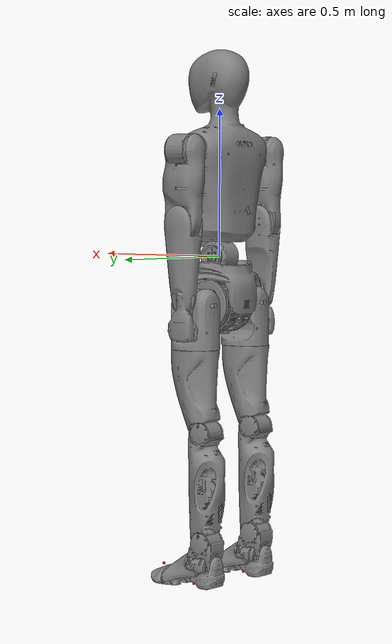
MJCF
<!-- Description:
Isaac Lab robot-only asset derived from inreal_v2_entity2_0528.xml.
Scene floor, lights, visualization assets, and the 1.12 m world spawn offset are removed.
0528 xml: 小腿碰撞体用长方体代替
-->
<mujoco model="InRealV2">
  <!-- Isaac Sim 4.5's MJCF importer crashes when several binary STL files share
       its generated STL_BINARY_ node name. Unique OBJ nodes avoid that importer bug. -->
  <compiler angle="radian" meshdir="../mesh/isaac/"/>

  <default>
    <default class="foot_collision">
      <geom priority="1" condim="3"/>
    </default>
  </default>

  <asset>
    <mesh name="R" content_type="model/obj" file="R.obj"/>
    <mesh name="L1" content_type="model/obj" file="L1.obj"/>
    <mesh name="L11" content_type="model/obj" file="L11.obj"/>
    <mesh name="L2" content_type="model/obj" file="L2.obj"/>
    <mesh name="L21" content_type="model/obj" file="L21.obj"/>
    <mesh name="L3" content_type="model/obj" file="L3.obj"/>
    <mesh name="L31" content_type="model/obj" file="L31.obj"/>
    <mesh name="L4" content_type="model/obj" file="L4.obj"/>
    <mesh name="L41" content_type="model/obj" file="L41.obj"/>
    <mesh name="L5" content_type="model/obj" file="L5.obj"/>
    <mesh name="L51" content_type="model/obj" file="L51.obj"/>
    <mesh name="L6" content_type="model/obj" file="L6.obj"/>
    <mesh name="L7" content_type="model/obj" file="L7.obj"/>
    <mesh name="L61" content_type="model/obj" file="L61.obj"/>
    <mesh name="L71" content_type="model/obj" file="L71.obj"/>
    <mesh name="W" content_type="model/obj" file="W.obj"/>
    <mesh name="C" content_type="model/obj" file="C.obj"/>
    <mesh name="A1" content_type="model/obj" file="A1.obj"/>
    <mesh name="A11" content_type="model/obj" file="A11.obj"/>
    <mesh name="A2" content_type="model/obj" file="A2.obj"/>
    <mesh name="A21" content_type="model/obj" file="A21.obj"/>
    <mesh name="A3" content_type="model/obj" file="A3.obj"/>
    <mesh name="A31" content_type="model/obj" file="A31.obj"/>
  </asset>

  <worldbody>
    <body name="pelvis" pos="0 0 0">
      <!-- pelvis ← entity1.r: mass 10.983→11.555, CoM z -0.146→-0.145 -->
      <inertial pos="0 0 -0.145" mass="11.555" fullinertia="0.083 0.0726 0.071 0 0.000249 0"/>
      <joint name="floating_base_joint" type="free"/>
      <geom type="mesh" contype="0" conaffinity="0" group="1" density="0" mesh="R"/>
      <geom size="0.05 0.175 0.05" pos="0 0 -0.035" type="box" group="3"/>

      <!-- left leg -->
      <!-- hip_pitch_link ← entity1.l1: body y 0.1407→0.14, mass 2.425→2.432 -->
      <body name="left_hip_pitch_link" pos="0 0.14 -0.159">
        <inertial pos="0 0 0" mass="2.432" fullinertia="0.0039 0.0029 0.0032 0 0 0"/>
        <joint name="left_hip_pitch_joint" pos="0 0 0" axis="0 1 0" range="-1.57 1.57" damping="0.05" frictionloss="3" solreffriction="0.0001 2" actuatorfrcrange="-587 587"/>
        <geom type="mesh" contype="0" conaffinity="0" group="1" density="0" mesh="L1"/>
        <geom size="0.055 0.035" quat="0.707035 0 0.707179 0" type="cylinder" group="3"/>
        <!-- hip_roll_link ← entity1.l2: mass 3.246→3.348, CoM pos updated -->
        <body name="left_hip_roll_link" pos="-0.01 0 0">
          <inertial pos="0.0014 0 -0.135" mass="3.348" fullinertia="0.0123 0.0136 0.00678 0 -0.000658 0"/>
          <joint name="left_hip_roll_joint" pos="0 0 0" axis="1 0 0" range="-0.35 1.57" damping="0.05" actuatorfrcrange="-336 336"/>
          <geom type="mesh" contype="0" conaffinity="0" group="1" density="0" mesh="L2"/>
          <geom size="0.05 0.04" pos="0 0 -0.1" type="cylinder" group="3"/>
          <!-- hip_yaw_link ← entity1.l3: body z -0.2051→-0.20534, mass unchanged, inertia updated -->
          <body name="left_hip_yaw_link" pos="0 0 -0.20534">
            <inertial pos="-0.018 -0.001 -0.126" mass="4.39" fullinertia="0.022 0.0227 0.0069 -0.000147 -0.003543 -0.000577"/>
            <joint name="left_hip_yaw_joint" pos="0 0 0" axis="0 0 1" range="-0.785 0.785" damping="0.05" actuatorfrcrange="-336 336"/>
            <geom type="mesh" contype="0" conaffinity="0" group="1" density="0" mesh="L3"/>
            <geom size="0.07 0.075" pos="0 0 -0.05" type="cylinder" group="3"/>
            <!-- knee_link ← entity1.l4: body z -0.2226→-0.2227, mass 4.497→4.765, range -0.26~2.2→0~2.44 -->
            <body name="left_knee_link" pos="-0.043 0 -0.2227">
              <inertial pos="0.002 -0.001 -0.247" mass="4.765" fullinertia="0.04785 0.0477 0.00586 -0.00001 -0.00144 -0.00095"/>
              <joint name="left_knee_joint" pos="0 0 0" axis="0 1 0" range="0 2.44" damping="0.05" frictionloss="8" solreffriction="0.0001 2" actuatorfrcrange="-338 338"/>
              <geom type="mesh" contype="0" conaffinity="0" group="1" density="0" mesh="L4"/>
              <geom size="0.072 0.06 0.14" pos="0.01 0 -0.18" type="box" group="3"/>
              <!-- ankle_pitch_link ← entity1.l5: mass 0.954→1.108, range -0.6~0.75→-0.55~0.73 -->
              <body name="left_ankle_pitch_link" pos="0 0 -0.37">
                <inertial pos="0.011 0.0019 -0.0567" mass="1.108" fullinertia="0.00206 0.0023 0.0016 0.000024 0.000276 -0.000112"/>
                <joint name="left_ankle_pitch_joint" pos="0 0 0" axis="0 1 0" range="-0.55 0.73" damping="0.05" frictionloss="8" solreffriction="0.0001 2" actuatorfrcrange="-338 338"/>
                <geom type="mesh" contype="0" conaffinity="0" group="1" density="0" mesh="L5"/>
                <geom size="0.07 0.05" quat="0.707035 0.707179 0 0" type="cylinder" group="3"/>
                <!-- ankle_roll_link ← entity1.l6: mass 0.91→0.803, range -0.26~0.26→-0.523~0.523 -->
                <body name="left_ankle_roll_link" pos="0.014 0 -0.085">
                  <site name="left_foot" rgba="1 0 0 1" pos="0.04 0 -0.06"/>
                  <site name="left_foot_face" rgba="1 0 0 1" pos="0.17 0 -0.005"/>
                  <inertial pos="0.079793 0.004225 -0.031435" mass="1.580" fullinertia="0.002881 0.009531 0.010455 -0.000298 0.000727 -0.000156"/>
                  <joint name="left_ankle_roll_joint" pos="0 0 0" axis="1 0 0" range="-0.523 0.523" damping="0.05" actuatorfrcrange="-38 38"/>
                  <geom type="mesh" contype="0" conaffinity="0" group="1" density="0" mesh="L6"/>
                  <geom pos="0.131255 0 -0.0463567" quat="1 0 0 0" type="mesh" contype="0" conaffinity="0" group="1" density="0" mesh="L7"/>
                  <geom size="0.05 0.05 0.035" pos="0 0 -0.01" type="box" group="3" class="foot_collision"/>
                  <geom size="0.015 0.04" pos="0.027 0 0.05" euler="1.57 0 0" type="cylinder" group="3" class="foot_collision"/>
                  <geom name="left_foot3_collision" size="0.01 0.03" pos="-0.036 0 -0.056" quat="0.707035 0 0.707179 0" type="cylinder" group="3" class="foot_collision"/>
                  <geom name="left_foot4_collision" size="0.01 0.03" pos="-0.036 0.018 -0.056" quat="0.707035 0 0.707179 0" type="cylinder" group="3" class="foot_collision"/>
                  <geom name="left_foot5_collision" size="0.01 0.025" pos="-0.036 0.036 -0.056" quat="0.707035 0 0.707179 0" type="cylinder" group="3" class="foot_collision"/>
                  <geom name="left_foot6_collision" size="0.01 0.03" pos="-0.036 -0.018 -0.056" quat="0.707035 0 0.707179 0" type="cylinder" group="3" class="foot_collision"/>
                  <geom name="left_foot7_collision" size="0.01 0.025" pos="-0.036 -0.036 -0.056" quat="0.707035 0 0.707179 0" type="cylinder" group="3" class="foot_collision"/>
                  <geom name="left_foot8_collision" size="0.01 0.055" pos="0.14 0 -0.0563567" quat="0.707035 0 0.707179 0" type="cylinder" group="3" class="foot_collision"/>
                  <geom name="left_foot9_collision" size="0.01 0.055" pos="0.14 0.02 -0.0563567" quat="0.707035 0 0.707179 0" type="cylinder" group="3" class="foot_collision"/>
                  <geom name="left_foot10_collision" size="0.01 0.05" pos="0.135 0.04 -0.0563567" quat="0.707035 0 0.707179 0" type="cylinder" group="3" class="foot_collision"/>
                  <geom name="left_foot11_collision" size="0.01 0.055" pos="0.14 -0.02 -0.0563567" quat="0.707035 0 0.707179 0" type="cylinder" group="3" class="foot_collision"/>
                  <geom name="left_foot12_collision" size="0.01 0.05" pos="0.135 -0.04 -0.0563567" quat="0.707035 0 0.707179 0" type="cylinder" group="3" class="foot_collision"/>
                  <!-- 鞋面碰撞体：横向宽度与 L7 可视网格（约 0.11 m）一致。 -->
                  <geom size="0.088 0.055 0.02" pos="0.12 0 -0.008" euler="0 0.35 0" type="box" group="3" class="foot_collision"/>
                </body>
              </body>
            </body>
          </body>
        </body>
      </body>

      <!-- right leg -->
      <!-- hip_pitch_link ← entity1.l1m: body y -0.1417→-0.14, mass 2.425→2.432 -->
      <body name="right_hip_pitch_link" pos="0 -0.14 -0.159">
        <inertial pos="0 0 0" mass="2.432" fullinertia="0.0039 0.0029 0.0032 0 0 0"/>
        <joint name="right_hip_pitch_joint" pos="0 0 0" axis="0 1 0" range="-1.57 1.57" damping="0.05" frictionloss="3" solreffriction="0.0001 2" actuatorfrcrange="-587 587"/>
        <geom type="mesh" contype="0" conaffinity="0" group="1" density="0" mesh="L11"/>
        <geom size="0.055 0.035" quat="0.707035 0 0.707179 0" type="cylinder" group="3"/>
        <!-- hip_roll_link ← entity1.l2m: mass 3.246→3.348, CoM pos updated -->
        <body name="right_hip_roll_link" pos="-0.01 0 0">
          <inertial pos="0.0014 0 -0.135" mass="3.348" fullinertia="0.0123 0.0136 0.00678 0 -0.000658 0"/>
          <joint name="right_hip_roll_joint" pos="0 0 0" axis="1 0 0" range="-1.57 0.35" damping="0.05" actuatorfrcrange="-336 336"/>
          <geom type="mesh" contype="0" conaffinity="0" group="1" density="0" mesh="L21"/>
          <geom size="0.05 0.04" pos="0 0 -0.1" type="cylinder" group="3"/>
          <!-- hip_yaw_link ← entity1.l3m: body z -0.2051→-0.20534, inertia updated (Ixy,Iyz signs flipped) -->
          <body name="right_hip_yaw_link" pos="0 0 -0.20534">
            <inertial pos="-0.018 0.001 -0.126" mass="4.39" fullinertia="0.022 0.0227 0.0069 0.000147 -0.003543 0.000577"/>
            <joint name="right_hip_yaw_joint" pos="0 0 0" axis="0 0 1" range="-0.785 0.785" damping="0.05" actuatorfrcrange="-336 336"/>
            <geom type="mesh" contype="0" conaffinity="0" group="1" density="0" mesh="L31"/>
            <geom size="0.07 0.075" pos="0 0 -0.05" type="cylinder" group="3"/>
            <!-- knee_link ← entity1.l4m: body z -0.2226→-0.2227, mass 4.497→4.765, range -0.26~2.2→0~2.44 -->
            <body name="right_knee_link" pos="-0.043 0 -0.2227">
              <inertial pos="0.002 0.001 -0.247" mass="4.765" fullinertia="0.04785 0.0477 0.00586 0.00001 -0.00144 0.00095"/>
              <joint name="right_knee_joint" pos="0 0 0" axis="0 1 0" range="0 2.44" damping="0.05" frictionloss="8" solreffriction="0.0001 2" actuatorfrcrange="-338 338"/>
              <geom type="mesh" contype="0" conaffinity="0" group="1" density="0" mesh="L41"/>
              <geom size="0.072 0.06 0.14" pos="0.01 0 -0.18" type="box" group="3"/>
              <!-- ankle_pitch_link ← entity1.l5m: mass 0.954→1.108, range -0.6~0.75→-0.55~0.73 -->
              <body name="right_ankle_pitch_link" pos="0 0 -0.37">
                <inertial pos="0.011 -0.0019 -0.0567" mass="1.108" fullinertia="0.00206 0.0023 0.0016 -0.000024 0.000276 0.000112"/>
                <joint name="right_ankle_pitch_joint" pos="0 0 0" axis="0 1 0" range="-0.55 0.73" damping="0.05" frictionloss="8" solreffriction="0.0001 2" actuatorfrcrange="-338 338"/>
                <geom type="mesh" contype="0" conaffinity="0" group="1" density="0" mesh="L51"/>
                <geom size="0.07 0.05" quat="0.707035 0.707179 0 0" type="cylinder" group="3"/>
                <!-- ankle_roll_link ← entity1.l6m: mass 0.91→0.803, range -0.26~0.26→-0.523~0.523 -->
                <body name="right_ankle_roll_link" pos="0.014 0 -0.085">
                  <site name="right_foot" rgba="1 0 0 1" pos="0.04 0 -0.06"/>
                  <site name="right_foot_face" rgba="1 0 0 1" pos="0.17 0 -0.005"/>
                  <inertial pos="0.079793 -0.004225 -0.031435" mass="1.580" fullinertia="0.002881 0.009531 0.010455 0.000298 0.000727 0.000156"/>
                  <joint name="right_ankle_roll_joint" pos="0 0 0" axis="1 0 0" range="-0.523 0.523" damping="0.05" actuatorfrcrange="-38 38"/>
                  <geom type="mesh" contype="0" conaffinity="0" group="1" density="0" mesh="L61"/>
                  <geom pos="0.131255 0 -0.0463567" quat="1 0 0 0" type="mesh" contype="0" conaffinity="0" group="1" density="0" mesh="L71"/>
                  <geom size="0.05 0.05 0.035" pos="0 0 -0.01" type="box" group="3" class="foot_collision"/>
                  <geom size="0.015 0.04" pos="0.027 0 0.05" euler="1.57 0 0" type="cylinder" group="3" class="foot_collision"/>
                  <geom name="right_foot3_collision" size="0.01 0.03" pos="-0.036 0 -0.056" quat="0.707035 0 0.707179 0" type="cylinder" group="3" class="foot_collision"/>
                  <geom name="right_foot4_collision" size="0.01 0.03" pos="-0.036 0.018 -0.056" quat="0.707035 0 0.707179 0" type="cylinder" group="3" class="foot_collision"/>
                  <geom name="right_foot5_collision" size="0.01 0.025" pos="-0.036 0.036 -0.056" quat="0.707035 0 0.707179 0" type="cylinder" group="3" class="foot_collision"/>
                  <geom name="right_foot6_collision" size="0.01 0.03" pos="-0.036 -0.018 -0.056" quat="0.707035 0 0.707179 0" type="cylinder" group="3" class="foot_collision"/>
                  <geom name="right_foot7_collision" size="0.01 0.025" pos="-0.036 -0.036 -0.056" quat="0.707035 0 0.707179 0" type="cylinder" group="3" class="foot_collision"/>
                  <geom name="right_foot8_collision" size="0.01 0.055" pos="0.14 0 -0.0563567" quat="0.707035 0 0.707179 0" type="cylinder" group="3" class="foot_collision"/>
                  <geom name="right_foot9_collision" size="0.01 0.055" pos="0.14 0.02 -0.0563567" quat="0.707035 0 0.707179 0" type="cylinder" group="3" class="foot_collision"/>
                  <geom name="right_foot10_collision" size="0.01 0.05" pos="0.135 0.04 -0.0563567" quat="0.707035 0 0.707179 0" type="cylinder" group="3" class="foot_collision"/>
                  <geom name="right_foot11_collision" size="0.01 0.055" pos="0.14 -0.02 -0.0563567" quat="0.707035 0 0.707179 0" type="cylinder" group="3" class="foot_collision"/>
                  <geom name="right_foot12_collision" size="0.01 0.05" pos="0.135 -0.04 -0.0563567" quat="0.707035 0 0.707179 0" type="cylinder" group="3" class="foot_collision"/>
                  <!-- 鞋面碰撞体：横向宽度与 L71 可视网格（约 0.11 m）一致。 -->
                  <geom size="0.088 0.055 0.02" pos="0.12 0 -0.008" euler="0 0.35 0" type="box" group="3" class="foot_collision"/>
                </body>
              </body>
            </body>
          </body>
        </body>
      </body>

      <!-- waist -->
      <!-- waist_pitch_link ← entity1.w: mass 4.139→2.441, CoM z 0.042→0.0035, range -1.2~1.2→-1.57~1.57 -->
      <body name="waist_pitch_link">
        <inertial pos="0 0 0.0035" mass="2.441" fullinertia="0.0033 0.0041 0.0028 0 0 0"/>
        <joint name="waist_pitch_joint" pos="0 0 0" axis="0 1 0" range="-1.57 1.57" damping="0.05" actuatorfrcrange="-336 336"/>
        <geom type="mesh" contype="0" conaffinity="0" group="1" density="0" mesh="W"/>
        <!-- torso_link ← entity1.ch: body z 0.3515→0.356, mass 14.292+battery→21.125, battery body removed -->
        <body name="torso_link" pos="-0.018 0 0.356">
          <site name="IMU" pos="0 0 0" size="0.01" quat="1 0 0 0"/>
          <inertial pos="0.013 0 -0.062" mass="21.125" fullinertia="0.505 0.412 0.182 0 0.01 0"/>
          <joint name="waist_yaw_joint" pos="0 0 0" axis="0 0 1" range="-3.14 3.14" damping="0.05" actuatorfrcrange="-336 336"/>
          <geom type="mesh" contype="0" conaffinity="0" group="1" density="0" mesh="C"/>
          <geom size="0.05 0.15 0.25" type="box" group="3"/>
          <!-- left arm -->
          <!-- shoulder_pitch_link ← entity1.a1: body y 0.2207→0.2205, mass 2.451→2.463, range -3.14~1.57→-3.14~3.14 -->
          <body name="left_shoulder_pitch_link" pos="0 0.2205 0">
            <inertial pos="0 -0.004 0" mass="2.463" fullinertia="0.004255 0.002852 0.003353 0 0 0"/>
            <joint name="left_shoulder_pitch_joint" pos="0 0 0" axis="0 1 0" range="-3.14 3.14" damping="0.05" actuatorfrcrange="-336 336"/>
            <geom type="mesh" contype="0" conaffinity="0" group="1" density="0" mesh="A1"/>
            <geom size="0.04 0.035" pos="0 0.01 0" quat="0.707035 0 0.707179 0" type="cylinder" group="3"/>
            <!-- shoulder_roll_link ← entity1.a2: mass 2.526→2.585, CoM updated -->
            <body name="left_shoulder_roll_link">
              <inertial pos="0 -0.0023 -0.181" mass="2.585" fullinertia="0.019 0.0215 0.0053 0 -0.00003 -0.000328"/>
              <joint name="left_shoulder_roll_joint" pos="0 0 0" axis="1 0 0" range="-0.13 1.57" damping="0.05" actuatorfrcrange="-336 336"/>
              <geom type="mesh" contype="0" conaffinity="0" group="1" density="0" mesh="A2"/>
              <geom size="0.05 0.1" pos="0 0.02 -0.15" type="cylinder" group="3"/>
              <!-- elbow_link ← entity1.a3: mass 1.679→3.534, range -1.76~0→-1.9~0 -->
              <body name="left_elbow_link" pos="0 0 -0.2385">
                <inertial pos="-0.0014 0.00597 -0.134" quat="0.708788 -0.00427982 -0.0143089 0.705263" mass="1.679" diaginertia="0.0127601 0.0120067 0.00227817"/>
                <joint name="left_elbow_joint" pos="0 0 0" axis="0 1 0" range="-1.9 0" actuatorfrcrange="-136 136"/>
                <geom type="mesh" contype="0" conaffinity="0" group="1" density="0" mesh="A3"/>
                <geom size="0.02 0.09" pos="0 0.03 -0.15" type="cylinder" group="3"/>
              </body>
            </body>
          </body>

          <!-- right arm -->
          <!-- shoulder_pitch_link ← entity1.a1m: body y -0.2207→-0.2205, mass 2.451→2.463, range -3.14~1.57→-3.14~3.14 -->
          <body name="right_shoulder_pitch_link" pos="0 -0.2205 0">
            <inertial pos="0 0.0036 0" mass="2.463" fullinertia="0.004255 0.002852 0.003353 0 0 0"/>
            <joint name="right_shoulder_pitch_joint" pos="0 0 0" axis="0 1 0" range="-3.14 3.14" damping="0.05" actuatorfrcrange="-336 336"/>
            <geom type="mesh" contype="0" conaffinity="0" group="1" density="0" mesh="A11"/>
            <geom size="0.04 0.035" pos="0 -0.01 0" quat="0.707035 0 0.707179 0" type="cylinder" group="3"/>
            <!-- shoulder_roll_link ← entity1.a2m: mass 2.526→2.585, CoM updated (Iyz sign flipped) -->
            <body name="right_shoulder_roll_link">
              <inertial pos="0 0.0023 -0.181" mass="2.585" fullinertia="0.019 0.0215 0.0053 0 -0.00003 0.000328"/>
              <joint name="right_shoulder_roll_joint" pos="0 0 0" axis="1 0 0" range="-1.57 0.13" damping="0.05" actuatorfrcrange="-336 336"/>
              <geom type="mesh" contype="0" conaffinity="0" group="1" density="0" mesh="A21"/>
              <geom size="0.05 0.1" pos="0 -0.02 -0.15" type="cylinder" group="3"/>
              <!-- elbow_link ← entity1.a3m: mass 1.679→3.534, range -1.76~0→-1.9~0 (Ixy,Iyz signs flipped) -->
              <body name="right_elbow_link" pos="0 0 -0.2385">
                <inertial pos="-0.0014 -0.00597 -0.134" quat="0.705263 -0.0143089 -0.00427982 0.708788" mass="1.679" diaginertia="0.0127601 0.0120067 0.00227817"/>
                <joint name="right_elbow_joint" pos="0 0 0" axis="0 1 0" range="-1.9 0" actuatorfrcrange="-136 136"/>
                <geom type="mesh" contype="0" conaffinity="0" group="1" density="0" mesh="A31"/>
                <geom size="0.02 0.09" pos="0 -0.03 -0.15" type="cylinder" group="3"/>
              </body>
            </body>
          </body>

        </body>
      </body>
    </body>
  </worldbody>

  <sensor>
    <accelerometer name="BodyAcc" site="IMU" noise="0.1"/>
    <gyro name="BodyGyro" site="IMU" noise="0.001"/>
    <subtreeangmom name="root_angmom" body="torso_link"/>
  </sensor>
</mujoco>
